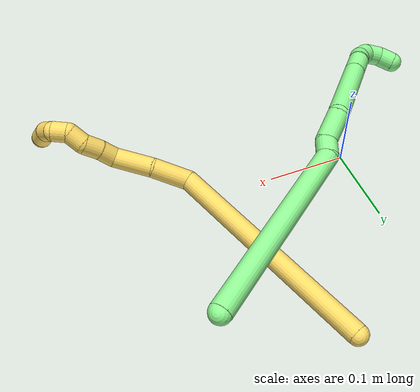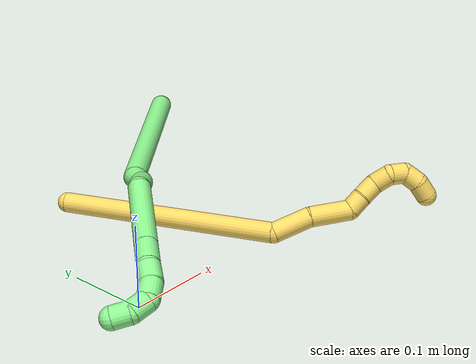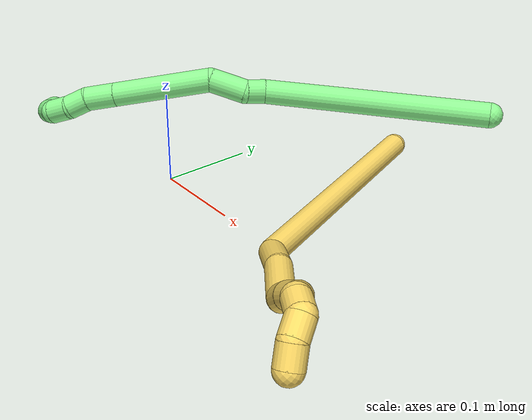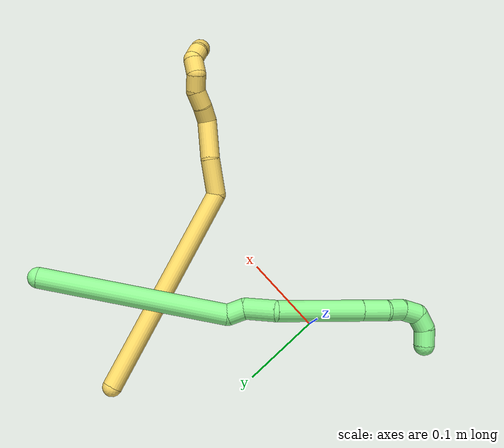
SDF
<sdf version="1.7">
 <world name="default">
  <model name="5">
   <static>0</static>
   <link name="5">
    <collision name="collision-cylinder-e_1_1_4">
     <pose>0.048866 -0.118893 -0.051718 1.9811 0.360432 0.542189</pose>
     <geometry><cylinder><radius>0.0125</radius><length>0.277115</length></cylinder></geometry>
     <surface>
      <friction><ode><mu>1.16</mu><mu2>1.16</mu2><slip1>0</slip1><slip2>0</slip2></ode></friction>
      <contact><ode><kp>1e+06</kp><kd>1</kd><max_vel>0</max_vel><min_depth>0.001</min_depth></ode></contact>
     </surface>
    </collision>
    <visual name="visual-cylinder-e_1_1_4">
     <pose>0.048866 -0.118893 -0.051718 1.9811 0.360432 0.542189</pose>
     <geometry><cylinder><radius>0.0125</radius><length>0.277115</length></cylinder></geometry>
     <material><ambient>1 0.858824 0.4 1</ambient></material>
    </visual>
    <collision name="collision-cylinder-e_2_4_5">
     <pose>0.112875 -0.255121 -0.097733 1.25296 0.692608 0.510905</pose>
     <geometry><cylinder><radius>0.0125</radius><length>0.047427</length></cylinder></geometry>
     <surface>
      <friction><ode><mu>1.16</mu><mu2>1.16</mu2><slip1>0</slip1><slip2>0</slip2></ode></friction>
      <contact><ode><kp>1e+06</kp><kd>1</kd><max_vel>0</max_vel><min_depth>0.001</min_depth></ode></contact>
     </surface>
    </collision>
    <visual name="visual-cylinder-e_2_4_5">
     <pose>0.112875 -0.255121 -0.097733 1.25296 0.692608 0.510905</pose>
     <geometry><cylinder><radius>0.0125</radius><length>0.047427</length></cylinder></geometry>
     <material><ambient>1 0.858824 0.4 1</ambient></material>
    </visual>
    <collision name="collision-cylinder-e_3_5_6">
     <pose>0.146227 -0.289789 -0.091537 1.54237 0.809884 0.789495</pose>
     <geometry><cylinder><radius>0.0125</radius><length>0.05029</length></cylinder></geometry>
     <surface>
      <friction><ode><mu>1.16</mu><mu2>1.16</mu2><slip1>0</slip1><slip2>0</slip2></ode></friction>
      <contact><ode><kp>1e+06</kp><kd>1</kd><max_vel>0</max_vel><min_depth>0.001</min_depth></ode></contact>
     </surface>
    </collision>
    <visual name="visual-cylinder-e_3_5_6">
     <pose>0.146227 -0.289789 -0.091537 1.54237 0.809884 0.789495</pose>
     <geometry><cylinder><radius>0.0125</radius><length>0.05029</length></cylinder></geometry>
     <material><ambient>1 0.858824 0.4 1</ambient></material>
    </visual>
    <collision name="collision-cylinder-e_4_6_7">
     <pose>0.168716 -0.314576 -0.084734 0.868352 0.412959 0.193644</pose>
     <geometry><cylinder><radius>0.0125</radius><length>0.021326</length></cylinder></geometry>
     <surface>
      <friction><ode><mu>1.16</mu><mu2>1.16</mu2><slip1>0</slip1><slip2>0</slip2></ode></friction>
      <contact><ode><kp>1e+06</kp><kd>1</kd><max_vel>0</max_vel><min_depth>0.001</min_depth></ode></contact>
     </surface>
    </collision>
    <visual name="visual-cylinder-e_4_6_7">
     <pose>0.168716 -0.314576 -0.084734 0.868352 0.412959 0.193644</pose>
     <geometry><cylinder><radius>0.0125</radius><length>0.021326</length></cylinder></geometry>
     <material><ambient>1 0.858824 0.4 1</ambient></material>
    </visual>
    <collision name="collision-cylinder-e_5_7_8">
     <pose>0.178813 -0.329124 -0.07191 0.827986 0.543462 0.243634</pose>
     <geometry><cylinder><radius>0.0125</radius><length>0.022501</length></cylinder></geometry>
     <surface>
      <friction><ode><mu>1.16</mu><mu2>1.16</mu2><slip1>0</slip1><slip2>0</slip2></ode></friction>
      <contact><ode><kp>1e+06</kp><kd>1</kd><max_vel>0</max_vel><min_depth>0.001</min_depth></ode></contact>
     </surface>
    </collision>
    <visual name="visual-cylinder-e_5_7_8">
     <pose>0.178813 -0.329124 -0.07191 0.827986 0.543462 0.243634</pose>
     <geometry><cylinder><radius>0.0125</radius><length>0.022501</length></cylinder></geometry>
     <material><ambient>1 0.858824 0.4 1</ambient></material>
    </visual>
    <collision name="collision-cylinder-e_6_8_9">
     <pose>0.188314 -0.345702 -0.062363 1.2612 0.354235 0.259869</pose>
     <geometry><cylinder><radius>0.0125</radius><length>0.021236</length></cylinder></geometry>
     <surface>
      <friction><ode><mu>1.16</mu><mu2>1.16</mu2><slip1>0</slip1><slip2>0</slip2></ode></friction>
      <contact><ode><kp>1e+06</kp><kd>1</kd><max_vel>0</max_vel><min_depth>0.001</min_depth></ode></contact>
     </surface>
    </collision>
    <visual name="visual-cylinder-e_6_8_9">
     <pose>0.188314 -0.345702 -0.062363 1.2612 0.354235 0.259869</pose>
     <geometry><cylinder><radius>0.0125</radius><length>0.021236</length></cylinder></geometry>
     <material><ambient>1 0.858824 0.4 1</ambient></material>
    </visual>
    <collision name="collision-cylinder-e_7_9_10">
     <pose>0.200287 -0.360803 -0.059203 1.54835 0.97528 0.956815</pose>
     <geometry><cylinder><radius>0.0125</radius><length>0.020027</length></cylinder></geometry>
     <surface>
      <friction><ode><mu>1.16</mu><mu2>1.16</mu2><slip1>0</slip1><slip2>0</slip2></ode></friction>
      <contact><ode><kp>1e+06</kp><kd>1</kd><max_vel>0</max_vel><min_depth>0.001</min_depth></ode></contact>
     </surface>
    </collision>
    <visual name="visual-cylinder-e_7_9_10">
     <pose>0.200287 -0.360803 -0.059203 1.54835 0.97528 0.956815</pose>
     <geometry><cylinder><radius>0.0125</radius><length>0.020027</length></cylinder></geometry>
     <material><ambient>1 0.858824 0.4 1</ambient></material>
    </visual>
    <collision name="collision-cylinder-e_8_10_11">
     <pose>0.214848 -0.37026 -0.065855 2.626 0.677689 1.85701</pose>
     <geometry><cylinder><radius>0.0125</radius><length>0.020002</length></cylinder></geometry>
     <surface>
      <friction><ode><mu>1.16</mu><mu2>1.16</mu2><slip1>0</slip1><slip2>0</slip2></ode></friction>
      <contact><ode><kp>1e+06</kp><kd>1</kd><max_vel>0</max_vel><min_depth>0.001</min_depth></ode></contact>
     </surface>
    </collision>
    <visual name="visual-cylinder-e_8_10_11">
     <pose>0.214848 -0.37026 -0.065855 2.626 0.677689 1.85701</pose>
     <geometry><cylinder><radius>0.0125</radius><length>0.020002</length></cylinder></geometry>
     <material><ambient>1 0.858824 0.4 1</ambient></material>
    </visual>
    <collision name="collision-cylinder-e_9_11_2">
     <pose>0.227716 -0.374003 -0.080198 -3.12865 0.717214 -3.10708</pose>
     <geometry><cylinder><radius>0.0125</radius><length>0.020076</length></cylinder></geometry>
     <surface>
      <friction><ode><mu>1.16</mu><mu2>1.16</mu2><slip1>0</slip1><slip2>0</slip2></ode></friction>
      <contact><ode><kp>1e+06</kp><kd>1</kd><max_vel>0</max_vel><min_depth>0.001</min_depth></ode></contact>
     </surface>
    </collision>
    <visual name="visual-cylinder-e_9_11_2">
     <pose>0.227716 -0.374003 -0.080198 -3.12865 0.717214 -3.10708</pose>
     <geometry><cylinder><radius>0.0125</radius><length>0.020076</length></cylinder></geometry>
     <material><ambient>1 0.858824 0.4 1</ambient></material>
    </visual>
    <collision name="collision-sphere-2">
     <pose>0.234314 -0.373905 -0.087762 0 -0 0</pose>
     <geometry><sphere><radius>0.0125</radius></sphere></geometry>
     <surface>
      <friction><ode><mu>1.16</mu><mu2>1.16</mu2><slip1>0</slip1><slip2>0</slip2></ode></friction>
      <contact><ode><kp>1e+06</kp><kd>1</kd><max_vel>0</max_vel><min_depth>0.001</min_depth></ode></contact>
     </surface>
    </collision>
    <visual name="visual-sphere-2">
     <pose>0.234314 -0.373905 -0.087762 0 -0 0</pose>
     <geometry><sphere><radius>0.0125</radius></sphere></geometry>
     <material><ambient>1 0.858824 0.4 1</ambient></material>
    </visual>
    <collision name="collision-sphere-11">
     <pose>0.221118 -0.374101 -0.072633 0 -0 0</pose>
     <geometry><sphere><radius>0.0125</radius></sphere></geometry>
     <surface>
      <friction><ode><mu>1.16</mu><mu2>1.16</mu2><slip1>0</slip1><slip2>0</slip2></ode></friction>
      <contact><ode><kp>1e+06</kp><kd>1</kd><max_vel>0</max_vel><min_depth>0.001</min_depth></ode></contact>
     </surface>
    </collision>
    <visual name="visual-sphere-11">
     <pose>0.221118 -0.374101 -0.072633 0 -0 0</pose>
     <geometry><sphere><radius>0.0125</radius></sphere></geometry>
     <material><ambient>1 0.858824 0.4 1</ambient></material>
    </visual>
    <collision name="collision-sphere-10">
     <pose>0.208577 -0.366418 -0.059077 0 -0 0</pose>
     <geometry><sphere><radius>0.0125</radius></sphere></geometry>
     <surface>
      <friction><ode><mu>1.16</mu><mu2>1.16</mu2><slip1>0</slip1><slip2>0</slip2></ode></friction>
      <contact><ode><kp>1e+06</kp><kd>1</kd><max_vel>0</max_vel><min_depth>0.001</min_depth></ode></contact>
     </surface>
    </collision>
    <visual name="visual-sphere-10">
     <pose>0.208577 -0.366418 -0.059077 0 -0 0</pose>
     <geometry><sphere><radius>0.0125</radius></sphere></geometry>
     <material><ambient>1 0.858824 0.4 1</ambient></material>
    </visual>
    <collision name="collision-sphere-9">
     <pose>0.191997 -0.355187 -0.059329 0 -0 0</pose>
     <geometry><sphere><radius>0.0125</radius></sphere></geometry>
     <surface>
      <friction><ode><mu>1.16</mu><mu2>1.16</mu2><slip1>0</slip1><slip2>0</slip2></ode></friction>
      <contact><ode><kp>1e+06</kp><kd>1</kd><max_vel>0</max_vel><min_depth>0.001</min_depth></ode></contact>
     </surface>
    </collision>
    <visual name="visual-sphere-9">
     <pose>0.191997 -0.355187 -0.059329 0 -0 0</pose>
     <geometry><sphere><radius>0.0125</radius></sphere></geometry>
     <material><ambient>1 0.858824 0.4 1</ambient></material>
    </visual>
    <collision name="collision-sphere-4">
     <pose>0.097733 -0.237786 -0.103436 0 -0 0</pose>
     <geometry><sphere><radius>0.0125</radius></sphere></geometry>
     <surface>
      <friction><ode><mu>1.16</mu><mu2>1.16</mu2><slip1>0</slip1><slip2>0</slip2></ode></friction>
      <contact><ode><kp>1e+06</kp><kd>1</kd><max_vel>0</max_vel><min_depth>0.001</min_depth></ode></contact>
     </surface>
    </collision>
    <visual name="visual-sphere-4">
     <pose>0.097733 -0.237786 -0.103436 0 -0 0</pose>
     <geometry><sphere><radius>0.0125</radius></sphere></geometry>
     <material><ambient>1 0.858824 0.4 1</ambient></material>
    </visual>
    <collision name="collision-sphere-1">
     <geometry><sphere><radius>0.0125</radius></sphere></geometry>
     <surface>
      <friction><ode><mu>1.16</mu><mu2>1.16</mu2><slip1>0</slip1><slip2>0</slip2></ode></friction>
      <contact><ode><kp>1e+06</kp><kd>1</kd><max_vel>0</max_vel><min_depth>0.001</min_depth></ode></contact>
     </surface>
    </collision>
    <visual name="visual-sphere-1">
     <geometry><sphere><radius>0.0125</radius></sphere></geometry>
     <material><ambient>1 0.858824 0.4 1</ambient></material>
    </visual>
    <collision name="collision-sphere-8">
     <pose>0.184631 -0.336217 -0.065397 0 -0 0</pose>
     <geometry><sphere><radius>0.0125</radius></sphere></geometry>
     <surface>
      <friction><ode><mu>1.16</mu><mu2>1.16</mu2><slip1>0</slip1><slip2>0</slip2></ode></friction>
      <contact><ode><kp>1e+06</kp><kd>1</kd><max_vel>0</max_vel><min_depth>0.001</min_depth></ode></contact>
     </surface>
    </collision>
    <visual name="visual-sphere-8">
     <pose>0.184631 -0.336217 -0.065397 0 -0 0</pose>
     <geometry><sphere><radius>0.0125</radius></sphere></geometry>
     <material><ambient>1 0.858824 0.4 1</ambient></material>
    </visual>
    <collision name="collision-sphere-5">
     <pose>0.128017 -0.272457 -0.09203 0 -0 0</pose>
     <geometry><sphere><radius>0.0125</radius></sphere></geometry>
     <surface>
      <friction><ode><mu>1.16</mu><mu2>1.16</mu2><slip1>0</slip1><slip2>0</slip2></ode></friction>
      <contact><ode><kp>1e+06</kp><kd>1</kd><max_vel>0</max_vel><min_depth>0.001</min_depth></ode></contact>
     </surface>
    </collision>
    <visual name="visual-sphere-5">
     <pose>0.128017 -0.272457 -0.09203 0 -0 0</pose>
     <geometry><sphere><radius>0.0125</radius></sphere></geometry>
     <material><ambient>1 0.858824 0.4 1</ambient></material>
    </visual>
    <collision name="collision-sphere-6">
     <pose>0.164437 -0.307122 -0.091044 0 -0 0</pose>
     <geometry><sphere><radius>0.0125</radius></sphere></geometry>
     <surface>
      <friction><ode><mu>1.16</mu><mu2>1.16</mu2><slip1>0</slip1><slip2>0</slip2></ode></friction>
      <contact><ode><kp>1e+06</kp><kd>1</kd><max_vel>0</max_vel><min_depth>0.001</min_depth></ode></contact>
     </surface>
    </collision>
    <visual name="visual-sphere-6">
     <pose>0.164437 -0.307122 -0.091044 0 -0 0</pose>
     <geometry><sphere><radius>0.0125</radius></sphere></geometry>
     <material><ambient>1 0.858824 0.4 1</ambient></material>
    </visual>
    <collision name="collision-sphere-7">
     <pose>0.172996 -0.322031 -0.078423 0 -0 0</pose>
     <geometry><sphere><radius>0.0125</radius></sphere></geometry>
     <surface>
      <friction><ode><mu>1.16</mu><mu2>1.16</mu2><slip1>0</slip1><slip2>0</slip2></ode></friction>
      <contact><ode><kp>1e+06</kp><kd>1</kd><max_vel>0</max_vel><min_depth>0.001</min_depth></ode></contact>
     </surface>
    </collision>
    <visual name="visual-sphere-7">
     <pose>0.172996 -0.322031 -0.078423 0 -0 0</pose>
     <geometry><sphere><radius>0.0125</radius></sphere></geometry>
     <material><ambient>1 0.858824 0.4 1</ambient></material>
    </visual>
    <inertial>
     <pose>0.101499 -0.206432 -0.064865 0 -0 0</pose>
     <mass>0.5</mass>
     <inertia>
      <ixx>0.00234</ixx>
      <ixy>0</ixy>
      <ixz>0</ixz>
      <iyy>0.000553</iyy>
      <iyz>0</iyz>
      <izz>0.000895</izz>
     </inertia>
    </inertial>
   </link>
   <pose>0.110346 0.237725 0.0115 -0.607636 0.411519 -0.064273</pose>
  </model>
  <model name="13">
   <static>0</static>
   <link name="13">
    <collision name="collision-cylinder-e_1_1_4">
     <pose>-0.060105 -0.064379 -0.070353 2.4005 -0.562379 -1.27866</pose>
     <geometry><cylinder><radius>0.0125</radius><length>0.22545</length></cylinder></geometry>
     <surface>
      <friction><ode><mu>1.16</mu><mu2>1.16</mu2><slip1>0</slip1><slip2>0</slip2></ode></friction>
      <contact><ode><kp>1e+06</kp><kd>1</kd><max_vel>0</max_vel><min_depth>0.001</min_depth></ode></contact>
     </surface>
    </collision>
    <visual name="visual-cylinder-e_1_1_4">
     <pose>-0.060105 -0.064379 -0.070353 2.4005 -0.562379 -1.27866</pose>
     <geometry><cylinder><radius>0.0125</radius><length>0.22545</length></cylinder></geometry>
     <material><ambient>0.564706 0.984314 0.572549 1</ambient></material>
    </visual>
    <collision name="collision-cylinder-e_2_4_5">
     <pose>-0.121539 -0.13814 -0.145514 2.04434 -0.125467 -0.204824</pose>
     <geometry><cylinder><radius>0.0125</radius><length>0.021249</length></cylinder></geometry>
     <surface>
      <friction><ode><mu>1.16</mu><mu2>1.16</mu2><slip1>0</slip1><slip2>0</slip2></ode></friction>
      <contact><ode><kp>1e+06</kp><kd>1</kd><max_vel>0</max_vel><min_depth>0.001</min_depth></ode></contact>
     </surface>
    </collision>
    <visual name="visual-cylinder-e_2_4_5">
     <pose>-0.121539 -0.13814 -0.145514 2.04434 -0.125467 -0.204824</pose>
     <geometry><cylinder><radius>0.0125</radius><length>0.021249</length></cylinder></geometry>
     <material><ambient>0.564706 0.984314 0.572549 1</ambient></material>
    </visual>
    <collision name="collision-cylinder-e_3_5_6">
     <pose>-0.133475 -0.161329 -0.157527 2.0518 -0.597835 -0.940708</pose>
     <geometry><cylinder><radius>0.0125</radius><length>0.037686</length></cylinder></geometry>
     <surface>
      <friction><ode><mu>1.16</mu><mu2>1.16</mu2><slip1>0</slip1><slip2>0</slip2></ode></friction>
      <contact><ode><kp>1e+06</kp><kd>1</kd><max_vel>0</max_vel><min_depth>0.001</min_depth></ode></contact>
     </surface>
    </collision>
    <visual name="visual-cylinder-e_3_5_6">
     <pose>-0.133475 -0.161329 -0.157527 2.0518 -0.597835 -0.940708</pose>
     <geometry><cylinder><radius>0.0125</radius><length>0.037686</length></cylinder></geometry>
     <material><ambient>0.564706 0.984314 0.572549 1</ambient></material>
    </visual>
    <collision name="collision-cylinder-e_4_6_7">
     <pose>-0.158442 -0.205854 -0.202473 2.45842 -0.286975 -0.772002</pose>
     <geometry><cylinder><radius>0.0125</radius><length>0.101472</length></cylinder></geometry>
     <surface>
      <friction><ode><mu>1.16</mu><mu2>1.16</mu2><slip1>0</slip1><slip2>0</slip2></ode></friction>
      <contact><ode><kp>1e+06</kp><kd>1</kd><max_vel>0</max_vel><min_depth>0.001</min_depth></ode></contact>
     </surface>
    </collision>
    <visual name="visual-cylinder-e_4_6_7">
     <pose>-0.158442 -0.205854 -0.202473 2.45842 -0.286975 -0.772002</pose>
     <geometry><cylinder><radius>0.0125</radius><length>0.101472</length></cylinder></geometry>
     <material><ambient>0.564706 0.984314 0.572549 1</ambient></material>
    </visual>
    <collision name="collision-cylinder-e_5_7_8">
     <pose>-0.177157 -0.245821 -0.251619 2.46019 -0.288244 -0.777089</pose>
     <geometry><cylinder><radius>0.0125</radius><length>0.030634</length></cylinder></geometry>
     <surface>
      <friction><ode><mu>1.16</mu><mu2>1.16</mu2><slip1>0</slip1><slip2>0</slip2></ode></friction>
      <contact><ode><kp>1e+06</kp><kd>1</kd><max_vel>0</max_vel><min_depth>0.001</min_depth></ode></contact>
     </surface>
    </collision>
    <visual name="visual-cylinder-e_5_7_8">
     <pose>-0.177157 -0.245821 -0.251619 2.46019 -0.288244 -0.777089</pose>
     <geometry><cylinder><radius>0.0125</radius><length>0.030634</length></cylinder></geometry>
     <material><ambient>0.564706 0.984314 0.572549 1</ambient></material>
    </visual>
    <collision name="collision-cylinder-e_6_8_9">
     <pose>-0.182526 -0.260085 -0.2725 2.65488 -0.094398 -0.376003</pose>
     <geometry><cylinder><radius>0.0125</radius><length>0.021536</length></cylinder></geometry>
     <surface>
      <friction><ode><mu>1.16</mu><mu2>1.16</mu2><slip1>0</slip1><slip2>0</slip2></ode></friction>
      <contact><ode><kp>1e+06</kp><kd>1</kd><max_vel>0</max_vel><min_depth>0.001</min_depth></ode></contact>
     </surface>
    </collision>
    <visual name="visual-cylinder-e_6_8_9">
     <pose>-0.182526 -0.260085 -0.2725 2.65488 -0.094398 -0.376003</pose>
     <geometry><cylinder><radius>0.0125</radius><length>0.021536</length></cylinder></geometry>
     <material><ambient>0.564706 0.984314 0.572549 1</ambient></material>
    </visual>
    <collision name="collision-cylinder-e_7_9_10">
     <pose>-0.18769 -0.268769 -0.291412 2.77075 -0.388917 -1.61955</pose>
     <geometry><cylinder><radius>0.0125</radius><length>0.021884</length></cylinder></geometry>
     <surface>
      <friction><ode><mu>1.16</mu><mu2>1.16</mu2><slip1>0</slip1><slip2>0</slip2></ode></friction>
      <contact><ode><kp>1e+06</kp><kd>1</kd><max_vel>0</max_vel><min_depth>0.001</min_depth></ode></contact>
     </surface>
    </collision>
    <visual name="visual-cylinder-e_7_9_10">
     <pose>-0.18769 -0.268769 -0.291412 2.77075 -0.388917 -1.61955</pose>
     <geometry><cylinder><radius>0.0125</radius><length>0.021884</length></cylinder></geometry>
     <material><ambient>0.564706 0.984314 0.572549 1</ambient></material>
    </visual>
    <collision name="collision-cylinder-e_8_10_11">
     <pose>-0.198944 -0.269499 -0.307288 -2.71348 -0.787218 2.17709</pose>
     <geometry><cylinder><radius>0.0125</radius><length>0.020059</length></cylinder></geometry>
     <surface>
      <friction><ode><mu>1.16</mu><mu2>1.16</mu2><slip1>0</slip1><slip2>0</slip2></ode></friction>
      <contact><ode><kp>1e+06</kp><kd>1</kd><max_vel>0</max_vel><min_depth>0.001</min_depth></ode></contact>
     </surface>
    </collision>
    <visual name="visual-cylinder-e_8_10_11">
     <pose>-0.198944 -0.269499 -0.307288 -2.71348 -0.787218 2.17709</pose>
     <geometry><cylinder><radius>0.0125</radius><length>0.020059</length></cylinder></geometry>
     <material><ambient>0.564706 0.984314 0.572549 1</ambient></material>
    </visual>
    <collision name="collision-cylinder-e_9_11_2">
     <pose>-0.212951 -0.260004 -0.31684 -2.0139 -0.760383 1.12725</pose>
     <geometry><cylinder><radius>0.0125</radius><length>0.02003</length></cylinder></geometry>
     <surface>
      <friction><ode><mu>1.16</mu><mu2>1.16</mu2><slip1>0</slip1><slip2>0</slip2></ode></friction>
      <contact><ode><kp>1e+06</kp><kd>1</kd><max_vel>0</max_vel><min_depth>0.001</min_depth></ode></contact>
     </surface>
    </collision>
    <visual name="visual-cylinder-e_9_11_2">
     <pose>-0.212951 -0.260004 -0.31684 -2.0139 -0.760383 1.12725</pose>
     <geometry><cylinder><radius>0.0125</radius><length>0.02003</length></cylinder></geometry>
     <material><ambient>0.564706 0.984314 0.572549 1</ambient></material>
    </visual>
    <collision name="collision-sphere-2">
     <pose>-0.219853 -0.253448 -0.319951 0 -0 0</pose>
     <geometry><sphere><radius>0.0125</radius></sphere></geometry>
     <surface>
      <friction><ode><mu>1.16</mu><mu2>1.16</mu2><slip1>0</slip1><slip2>0</slip2></ode></friction>
      <contact><ode><kp>1e+06</kp><kd>1</kd><max_vel>0</max_vel><min_depth>0.001</min_depth></ode></contact>
     </surface>
    </collision>
    <visual name="visual-sphere-2">
     <pose>-0.219853 -0.253448 -0.319951 0 -0 0</pose>
     <geometry><sphere><radius>0.0125</radius></sphere></geometry>
     <material><ambient>0.564706 0.984314 0.572549 1</ambient></material>
    </visual>
    <collision name="collision-sphere-11">
     <pose>-0.206048 -0.26656 -0.313728 0 -0 0</pose>
     <geometry><sphere><radius>0.0125</radius></sphere></geometry>
     <surface>
      <friction><ode><mu>1.16</mu><mu2>1.16</mu2><slip1>0</slip1><slip2>0</slip2></ode></friction>
      <contact><ode><kp>1e+06</kp><kd>1</kd><max_vel>0</max_vel><min_depth>0.001</min_depth></ode></contact>
     </surface>
    </collision>
    <visual name="visual-sphere-11">
     <pose>-0.206048 -0.26656 -0.313728 0 -0 0</pose>
     <geometry><sphere><radius>0.0125</radius></sphere></geometry>
     <material><ambient>0.564706 0.984314 0.572549 1</ambient></material>
    </visual>
    <collision name="collision-sphere-10">
     <pose>-0.191839 -0.272438 -0.300848 0 -0 0</pose>
     <geometry><sphere><radius>0.0125</radius></sphere></geometry>
     <surface>
      <friction><ode><mu>1.16</mu><mu2>1.16</mu2><slip1>0</slip1><slip2>0</slip2></ode></friction>
      <contact><ode><kp>1e+06</kp><kd>1</kd><max_vel>0</max_vel><min_depth>0.001</min_depth></ode></contact>
     </surface>
    </collision>
    <visual name="visual-sphere-10">
     <pose>-0.191839 -0.272438 -0.300848 0 -0 0</pose>
     <geometry><sphere><radius>0.0125</radius></sphere></geometry>
     <material><ambient>0.564706 0.984314 0.572549 1</ambient></material>
    </visual>
    <collision name="collision-sphere-9">
     <pose>-0.183541 -0.265099 -0.281975 0 -0 0</pose>
     <geometry><sphere><radius>0.0125</radius></sphere></geometry>
     <surface>
      <friction><ode><mu>1.16</mu><mu2>1.16</mu2><slip1>0</slip1><slip2>0</slip2></ode></friction>
      <contact><ode><kp>1e+06</kp><kd>1</kd><max_vel>0</max_vel><min_depth>0.001</min_depth></ode></contact>
     </surface>
    </collision>
    <visual name="visual-sphere-9">
     <pose>-0.183541 -0.265099 -0.281975 0 -0 0</pose>
     <geometry><sphere><radius>0.0125</radius></sphere></geometry>
     <material><ambient>0.564706 0.984314 0.572549 1</ambient></material>
    </visual>
    <collision name="collision-sphere-4">
     <pose>-0.12021 -0.128759 -0.140706 0 -0 0</pose>
     <geometry><sphere><radius>0.0125</radius></sphere></geometry>
     <surface>
      <friction><ode><mu>1.16</mu><mu2>1.16</mu2><slip1>0</slip1><slip2>0</slip2></ode></friction>
      <contact><ode><kp>1e+06</kp><kd>1</kd><max_vel>0</max_vel><min_depth>0.001</min_depth></ode></contact>
     </surface>
    </collision>
    <visual name="visual-sphere-4">
     <pose>-0.12021 -0.128759 -0.140706 0 -0 0</pose>
     <geometry><sphere><radius>0.0125</radius></sphere></geometry>
     <material><ambient>0.564706 0.984314 0.572549 1</ambient></material>
    </visual>
    <collision name="collision-sphere-1">
     <geometry><sphere><radius>0.0125</radius></sphere></geometry>
     <surface>
      <friction><ode><mu>1.16</mu><mu2>1.16</mu2><slip1>0</slip1><slip2>0</slip2></ode></friction>
      <contact><ode><kp>1e+06</kp><kd>1</kd><max_vel>0</max_vel><min_depth>0.001</min_depth></ode></contact>
     </surface>
    </collision>
    <visual name="visual-sphere-1">
     <geometry><sphere><radius>0.0125</radius></sphere></geometry>
     <material><ambient>0.564706 0.984314 0.572549 1</ambient></material>
    </visual>
    <collision name="collision-sphere-8">
     <pose>-0.181511 -0.255071 -0.263025 0 -0 0</pose>
     <geometry><sphere><radius>0.0125</radius></sphere></geometry>
     <surface>
      <friction><ode><mu>1.16</mu><mu2>1.16</mu2><slip1>0</slip1><slip2>0</slip2></ode></friction>
      <contact><ode><kp>1e+06</kp><kd>1</kd><max_vel>0</max_vel><min_depth>0.001</min_depth></ode></contact>
     </surface>
    </collision>
    <visual name="visual-sphere-8">
     <pose>-0.181511 -0.255071 -0.263025 0 -0 0</pose>
     <geometry><sphere><radius>0.0125</radius></sphere></geometry>
     <material><ambient>0.564706 0.984314 0.572549 1</ambient></material>
    </visual>
    <collision name="collision-sphere-5">
     <pose>-0.122869 -0.147521 -0.150321 0 -0 0</pose>
     <geometry><sphere><radius>0.0125</radius></sphere></geometry>
     <surface>
      <friction><ode><mu>1.16</mu><mu2>1.16</mu2><slip1>0</slip1><slip2>0</slip2></ode></friction>
      <contact><ode><kp>1e+06</kp><kd>1</kd><max_vel>0</max_vel><min_depth>0.001</min_depth></ode></contact>
     </surface>
    </collision>
    <visual name="visual-sphere-5">
     <pose>-0.122869 -0.147521 -0.150321 0 -0 0</pose>
     <geometry><sphere><radius>0.0125</radius></sphere></geometry>
     <material><ambient>0.564706 0.984314 0.572549 1</ambient></material>
    </visual>
    <collision name="collision-sphere-6">
     <pose>-0.144081 -0.175136 -0.164733 0 -0 0</pose>
     <geometry><sphere><radius>0.0125</radius></sphere></geometry>
     <surface>
      <friction><ode><mu>1.16</mu><mu2>1.16</mu2><slip1>0</slip1><slip2>0</slip2></ode></friction>
      <contact><ode><kp>1e+06</kp><kd>1</kd><max_vel>0</max_vel><min_depth>0.001</min_depth></ode></contact>
     </surface>
    </collision>
    <visual name="visual-sphere-6">
     <pose>-0.144081 -0.175136 -0.164733 0 -0 0</pose>
     <geometry><sphere><radius>0.0125</radius></sphere></geometry>
     <material><ambient>0.564706 0.984314 0.572549 1</ambient></material>
    </visual>
    <collision name="collision-sphere-7">
     <pose>-0.172802 -0.236571 -0.240213 0 -0 0</pose>
     <geometry><sphere><radius>0.0125</radius></sphere></geometry>
     <surface>
      <friction><ode><mu>1.16</mu><mu2>1.16</mu2><slip1>0</slip1><slip2>0</slip2></ode></friction>
      <contact><ode><kp>1e+06</kp><kd>1</kd><max_vel>0</max_vel><min_depth>0.001</min_depth></ode></contact>
     </surface>
    </collision>
    <visual name="visual-sphere-7">
     <pose>-0.172802 -0.236571 -0.240213 0 -0 0</pose>
     <geometry><sphere><radius>0.0125</radius></sphere></geometry>
     <material><ambient>0.564706 0.984314 0.572549 1</ambient></material>
    </visual>
    <inertial>
     <pose>-0.117924 -0.14809 -0.155798 0 -0 0</pose>
     <mass>0.5</mass>
     <inertia>
      <ixx>-0.00056</ixx>
      <ixy>0</ixy>
      <ixz>0</ixz>
      <iyy>-0.000781</iyy>
      <iyz>0</iyz>
      <izz>0.001135</izz>
     </inertia>
    </inertial>
   </link>
   <pose>0.25433 0.208285 0.10848 -0.534105 0.437148 -0.30642</pose>
  </model>
 </world>
</sdf>
